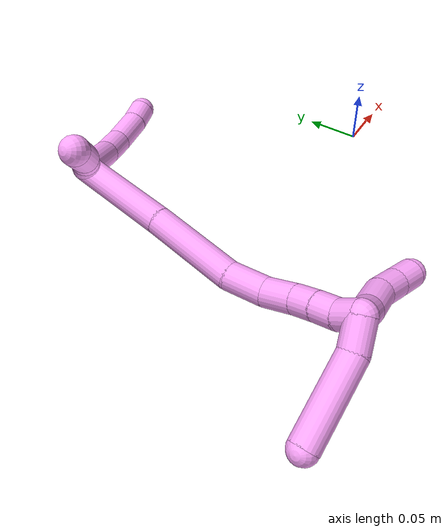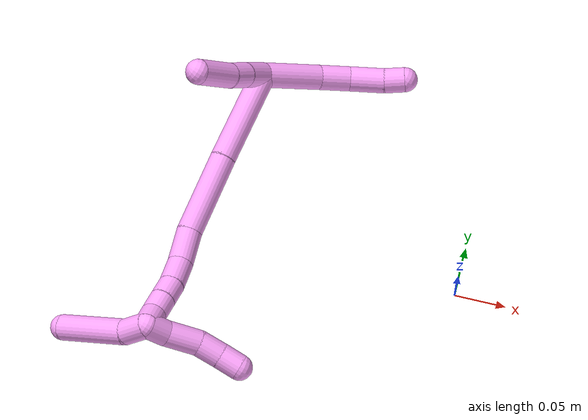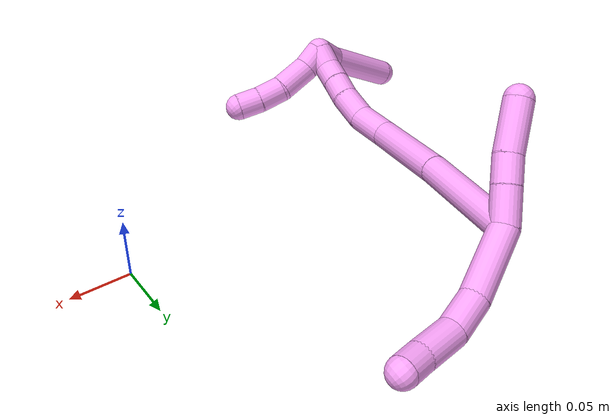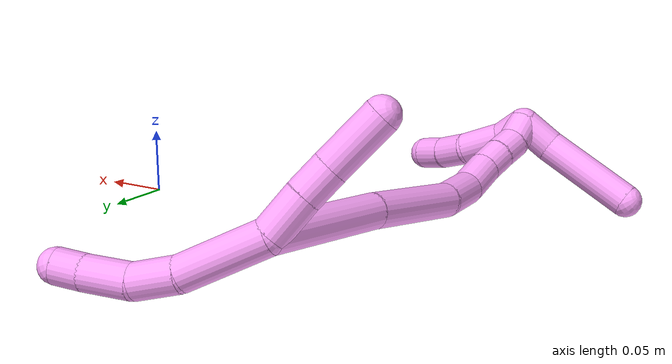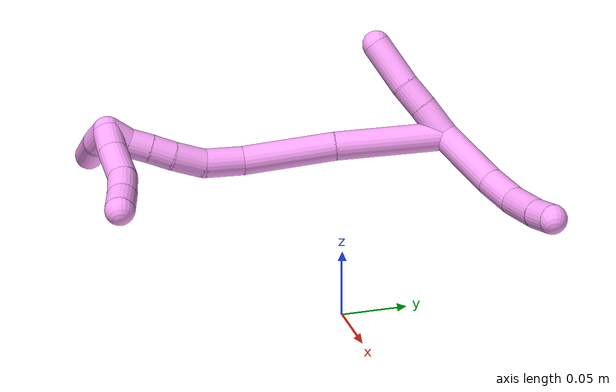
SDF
<sdf version="1.7">
 <world name="default">
  <model name="4">
   <static>0</static>
   <link name="4">
    <collision name="collision-cylinder-e_1_2_8">
     <pose>0.00943 0.011263 -0.027232 -2.74943 0.309716 -1.33217</pose>
     <geometry><cylinder><radius>0.0125</radius><length>0.061882</length></cylinder></geometry>
     <surface>
      <friction><ode><mu>1.16</mu><mu2>1.16</mu2><slip1>0</slip1><slip2>0</slip2></ode></friction>
      <contact><ode><kp>1e+06</kp><kd>1</kd><max_vel>0</max_vel><min_depth>0.001</min_depth></ode></contact>
     </surface>
    </collision>
    <visual name="visual-cylinder-e_1_2_8">
     <pose>0.00943 0.011263 -0.027232 -2.74943 0.309716 -1.33217</pose>
     <geometry><cylinder><radius>0.0125</radius><length>0.061882</length></cylinder></geometry>
     <material><ambient>1 0.65098 0.996078 1</ambient></material>
    </visual>
    <collision name="collision-cylinder-e_2_8_9">
     <pose>0.025715 0.02519 -0.068669 -2.95615 0.44279 -2.35804</pose>
     <geometry><cylinder><radius>0.0125</radius><length>0.031992</length></cylinder></geometry>
     <surface>
      <friction><ode><mu>1.16</mu><mu2>1.16</mu2><slip1>0</slip1><slip2>0</slip2></ode></friction>
      <contact><ode><kp>1e+06</kp><kd>1</kd><max_vel>0</max_vel><min_depth>0.001</min_depth></ode></contact>
     </surface>
    </collision>
    <visual name="visual-cylinder-e_2_8_9">
     <pose>0.025715 0.02519 -0.068669 -2.95615 0.44279 -2.35804</pose>
     <geometry><cylinder><radius>0.0125</radius><length>0.031992</length></cylinder></geometry>
     <material><ambient>1 0.65098 0.996078 1</ambient></material>
    </visual>
    <collision name="collision-cylinder-e_3_9_10">
     <pose>0.042436 0.026013 -0.097477 3.01611 0.590596 2.73427</pose>
     <geometry><cylinder><radius>0.0125</radius><length>0.03544</length></cylinder></geometry>
     <surface>
      <friction><ode><mu>1.16</mu><mu2>1.16</mu2><slip1>0</slip1><slip2>0</slip2></ode></friction>
      <contact><ode><kp>1e+06</kp><kd>1</kd><max_vel>0</max_vel><min_depth>0.001</min_depth></ode></contact>
     </surface>
    </collision>
    <visual name="visual-cylinder-e_3_9_10">
     <pose>0.042436 0.026013 -0.097477 3.01611 0.590596 2.73427</pose>
     <geometry><cylinder><radius>0.0125</radius><length>0.03544</length></cylinder></geometry>
     <material><ambient>1 0.65098 0.996078 1</ambient></material>
    </visual>
    <collision name="collision-cylinder-e_4_10_6">
     <pose>0.059029 0.023264 -0.119885 3.02584 0.707976 2.83056</pose>
     <geometry><cylinder><radius>0.0125</radius><length>0.020686</length></cylinder></geometry>
     <surface>
      <friction><ode><mu>1.16</mu><mu2>1.16</mu2><slip1>0</slip1><slip2>0</slip2></ode></friction>
      <contact><ode><kp>1e+06</kp><kd>1</kd><max_vel>0</max_vel><min_depth>0.001</min_depth></ode></contact>
     </surface>
    </collision>
    <visual name="visual-cylinder-e_4_10_6">
     <pose>0.059029 0.023264 -0.119885 3.02584 0.707976 2.83056</pose>
     <geometry><cylinder><radius>0.0125</radius><length>0.020686</length></cylinder></geometry>
     <material><ambient>1 0.65098 0.996078 1</ambient></material>
    </visual>
    <collision name="collision-cylinder-e_1_2_11">
     <pose>-3.7e-05 -0.011242 0.011191 0.787687 -0.002361 -0.000981</pose>
     <geometry><cylinder><radius>0.0125</radius><length>0.031725</length></cylinder></geometry>
     <surface>
      <friction><ode><mu>1.16</mu><mu2>1.16</mu2><slip1>0</slip1><slip2>0</slip2></ode></friction>
      <contact><ode><kp>1e+06</kp><kd>1</kd><max_vel>0</max_vel><min_depth>0.001</min_depth></ode></contact>
     </surface>
    </collision>
    <visual name="visual-cylinder-e_1_2_11">
     <pose>-3.7e-05 -0.011242 0.011191 0.787687 -0.002361 -0.000981</pose>
     <geometry><cylinder><radius>0.0125</radius><length>0.031725</length></cylinder></geometry>
     <material><ambient>1 0.65098 0.996078 1</ambient></material>
    </visual>
    <collision name="collision-cylinder-e_2_11_12">
     <pose>-0.000776 -0.03082 0.030939 0.77227 -0.058595 -0.023827</pose>
     <geometry><cylinder><radius>0.0125</radius><length>0.023934</length></cylinder></geometry>
     <surface>
      <friction><ode><mu>1.16</mu><mu2>1.16</mu2><slip1>0</slip1><slip2>0</slip2></ode></friction>
      <contact><ode><kp>1e+06</kp><kd>1</kd><max_vel>0</max_vel><min_depth>0.001</min_depth></ode></contact>
     </surface>
    </collision>
    <visual name="visual-cylinder-e_2_11_12">
     <pose>-0.000776 -0.03082 0.030939 0.77227 -0.058595 -0.023827</pose>
     <geometry><cylinder><radius>0.0125</radius><length>0.023934</length></cylinder></geometry>
     <material><ambient>1 0.65098 0.996078 1</ambient></material>
    </visual>
    <collision name="collision-cylinder-e_3_12_5">
     <pose>-0.001965 -0.052638 0.05709 0.653868 -0.022023 -0.007468</pose>
     <geometry><cylinder><radius>0.0125</radius><length>0.044341</length></cylinder></geometry>
     <surface>
      <friction><ode><mu>1.16</mu><mu2>1.16</mu2><slip1>0</slip1><slip2>0</slip2></ode></friction>
      <contact><ode><kp>1e+06</kp><kd>1</kd><max_vel>0</max_vel><min_depth>0.001</min_depth></ode></contact>
     </surface>
    </collision>
    <visual name="visual-cylinder-e_3_12_5">
     <pose>-0.001965 -0.052638 0.05709 0.653868 -0.022023 -0.007468</pose>
     <geometry><cylinder><radius>0.0125</radius><length>0.044341</length></cylinder></geometry>
     <material><ambient>1 0.65098 0.996078 1</ambient></material>
    </visual>
    <collision name="collision-cylinder-e_1_2_13">
     <pose>-0.033747 -0.034269 0.001025 1.54089 -0.777509 -0.75675</pose>
     <geometry><cylinder><radius>0.0125</radius><length>0.096214</length></cylinder></geometry>
     <surface>
      <friction><ode><mu>1.16</mu><mu2>1.16</mu2><slip1>0</slip1><slip2>0</slip2></ode></friction>
      <contact><ode><kp>1e+06</kp><kd>1</kd><max_vel>0</max_vel><min_depth>0.001</min_depth></ode></contact>
     </surface>
    </collision>
    <visual name="visual-cylinder-e_1_2_13">
     <pose>-0.033747 -0.034269 0.001025 1.54089 -0.777509 -0.75675</pose>
     <geometry><cylinder><radius>0.0125</radius><length>0.096214</length></cylinder></geometry>
     <material><ambient>1 0.65098 0.996078 1</ambient></material>
    </visual>
    <collision name="collision-cylinder-e_2_13_14">
     <pose>-0.097219 -0.095734 0.001381 1.59539 -0.829617 -0.847908</pose>
     <geometry><cylinder><radius>0.0125</radius><length>0.080589</length></cylinder></geometry>
     <surface>
      <friction><ode><mu>1.16</mu><mu2>1.16</mu2><slip1>0</slip1><slip2>0</slip2></ode></friction>
      <contact><ode><kp>1e+06</kp><kd>1</kd><max_vel>0</max_vel><min_depth>0.001</min_depth></ode></contact>
     </surface>
    </collision>
    <visual name="visual-cylinder-e_2_13_14">
     <pose>-0.097219 -0.095734 0.001381 1.59539 -0.829617 -0.847908</pose>
     <geometry><cylinder><radius>0.0125</radius><length>0.080589</length></cylinder></geometry>
     <material><ambient>1 0.65098 0.996078 1</ambient></material>
    </visual>
    <collision name="collision-cylinder-e_3_14_15">
     <pose>-0.136848 -0.136945 -0.000857 1.68231 -0.612321 -0.679526</pose>
     <geometry><cylinder><radius>0.0125</radius><length>0.034465</length></cylinder></geometry>
     <surface>
      <friction><ode><mu>1.16</mu><mu2>1.16</mu2><slip1>0</slip1><slip2>0</slip2></ode></friction>
      <contact><ode><kp>1e+06</kp><kd>1</kd><max_vel>0</max_vel><min_depth>0.001</min_depth></ode></contact>
     </surface>
    </collision>
    <visual name="visual-cylinder-e_3_14_15">
     <pose>-0.136848 -0.136945 -0.000857 1.68231 -0.612321 -0.679526</pose>
     <geometry><cylinder><radius>0.0125</radius><length>0.034465</length></cylinder></geometry>
     <material><ambient>1 0.65098 0.996078 1</ambient></material>
    </visual>
    <collision name="collision-cylinder-e_4_15_16">
     <pose>-0.151869 -0.164111 -0.001105 1.47066 -0.369358 -0.334795</pose>
     <geometry><cylinder><radius>0.0125</radius><length>0.028346</length></cylinder></geometry>
     <surface>
      <friction><ode><mu>1.16</mu><mu2>1.16</mu2><slip1>0</slip1><slip2>0</slip2></ode></friction>
      <contact><ode><kp>1e+06</kp><kd>1</kd><max_vel>0</max_vel><min_depth>0.001</min_depth></ode></contact>
     </surface>
    </collision>
    <visual name="visual-cylinder-e_4_15_16">
     <pose>-0.151869 -0.164111 -0.001105 1.47066 -0.369358 -0.334795</pose>
     <geometry><cylinder><radius>0.0125</radius><length>0.028346</length></cylinder></geometry>
     <material><ambient>1 0.65098 0.996078 1</ambient></material>
    </visual>
    <collision name="collision-cylinder-e_5_16_17">
     <pose>-0.160827 -0.186411 0.002459 1.33047 -0.38715 -0.305189</pose>
     <geometry><cylinder><radius>0.0125</radius><length>0.020346</length></cylinder></geometry>
     <surface>
      <friction><ode><mu>1.16</mu><mu2>1.16</mu2><slip1>0</slip1><slip2>0</slip2></ode></friction>
      <contact><ode><kp>1e+06</kp><kd>1</kd><max_vel>0</max_vel><min_depth>0.001</min_depth></ode></contact>
     </surface>
    </collision>
    <visual name="visual-cylinder-e_5_16_17">
     <pose>-0.160827 -0.186411 0.002459 1.33047 -0.38715 -0.305189</pose>
     <geometry><cylinder><radius>0.0125</radius><length>0.020346</length></cylinder></geometry>
     <material><ambient>1 0.65098 0.996078 1</ambient></material>
    </visual>
    <collision name="collision-cylinder-e_6_17_18">
     <pose>-0.16889 -0.2044 0.006788 1.33895 -0.435192 -0.346446</pose>
     <geometry><cylinder><radius>0.0125</radius><length>0.020032</length></cylinder></geometry>
     <surface>
      <friction><ode><mu>1.16</mu><mu2>1.16</mu2><slip1>0</slip1><slip2>0</slip2></ode></friction>
      <contact><ode><kp>1e+06</kp><kd>1</kd><max_vel>0</max_vel><min_depth>0.001</min_depth></ode></contact>
     </surface>
    </collision>
    <visual name="visual-cylinder-e_6_17_18">
     <pose>-0.16889 -0.2044 0.006788 1.33895 -0.435192 -0.346446</pose>
     <geometry><cylinder><radius>0.0125</radius><length>0.020032</length></cylinder></geometry>
     <material><ambient>1 0.65098 0.996078 1</ambient></material>
    </visual>
    <collision name="collision-cylinder-e_7_18_1">
     <pose>-0.174292 -0.222847 0.011399 1.31388 -0.118138 -0.091152</pose>
     <geometry><cylinder><radius>0.0125</radius><length>0.020008</length></cylinder></geometry>
     <surface>
      <friction><ode><mu>1.16</mu><mu2>1.16</mu2><slip1>0</slip1><slip2>0</slip2></ode></friction>
      <contact><ode><kp>1e+06</kp><kd>1</kd><max_vel>0</max_vel><min_depth>0.001</min_depth></ode></contact>
     </surface>
    </collision>
    <visual name="visual-cylinder-e_7_18_1">
     <pose>-0.174292 -0.222847 0.011399 1.31388 -0.118138 -0.091152</pose>
     <geometry><cylinder><radius>0.0125</radius><length>0.020008</length></cylinder></geometry>
     <material><ambient>1 0.65098 0.996078 1</ambient></material>
    </visual>
    <collision name="collision-cylinder-e_1_1_19">
     <pose>-0.175825 -0.230169 0.003445 -2.92679 -0.032993 0.303676</pose>
     <geometry><cylinder><radius>0.0125</radius><length>0.021461</length></cylinder></geometry>
     <surface>
      <friction><ode><mu>1.16</mu><mu2>1.16</mu2><slip1>0</slip1><slip2>0</slip2></ode></friction>
      <contact><ode><kp>1e+06</kp><kd>1</kd><max_vel>0</max_vel><min_depth>0.001</min_depth></ode></contact>
     </surface>
    </collision>
    <visual name="visual-cylinder-e_1_1_19">
     <pose>-0.175825 -0.230169 0.003445 -2.92679 -0.032993 0.303676</pose>
     <geometry><cylinder><radius>0.0125</radius><length>0.021461</length></cylinder></geometry>
     <material><ambient>1 0.65098 0.996078 1</ambient></material>
    </visual>
    <collision name="collision-cylinder-e_2_19_20">
     <pose>-0.172721 -0.226974 -0.023309 -3.08578 0.209024 -2.62145</pose>
     <geometry><cylinder><radius>0.0125</radius><length>0.033328</length></cylinder></geometry>
     <surface>
      <friction><ode><mu>1.16</mu><mu2>1.16</mu2><slip1>0</slip1><slip2>0</slip2></ode></friction>
      <contact><ode><kp>1e+06</kp><kd>1</kd><max_vel>0</max_vel><min_depth>0.001</min_depth></ode></contact>
     </surface>
    </collision>
    <visual name="visual-cylinder-e_2_19_20">
     <pose>-0.172721 -0.226974 -0.023309 -3.08578 0.209024 -2.62145</pose>
     <geometry><cylinder><radius>0.0125</radius><length>0.033328</length></cylinder></geometry>
     <material><ambient>1 0.65098 0.996078 1</ambient></material>
    </visual>
    <collision name="collision-cylinder-e_3_20_21">
     <pose>-0.16817 -0.228465 -0.051166 2.93721 0.092156 0.84512</pose>
     <geometry><cylinder><radius>0.0125</radius><length>0.023756</length></cylinder></geometry>
     <surface>
      <friction><ode><mu>1.16</mu><mu2>1.16</mu2><slip1>0</slip1><slip2>0</slip2></ode></friction>
      <contact><ode><kp>1e+06</kp><kd>1</kd><max_vel>0</max_vel><min_depth>0.001</min_depth></ode></contact>
     </surface>
    </collision>
    <visual name="visual-cylinder-e_3_20_21">
     <pose>-0.16817 -0.228465 -0.051166 2.93721 0.092156 0.84512</pose>
     <geometry><cylinder><radius>0.0125</radius><length>0.023756</length></cylinder></geometry>
     <material><ambient>1 0.65098 0.996078 1</ambient></material>
    </visual>
    <collision name="collision-cylinder-e_4_21_4">
     <pose>-0.165674 -0.234219 -0.07284 2.82081 0.131154 0.771208</pose>
     <geometry><cylinder><radius>0.0125</radius><length>0.021455</length></cylinder></geometry>
     <surface>
      <friction><ode><mu>1.16</mu><mu2>1.16</mu2><slip1>0</slip1><slip2>0</slip2></ode></friction>
      <contact><ode><kp>1e+06</kp><kd>1</kd><max_vel>0</max_vel><min_depth>0.001</min_depth></ode></contact>
     </surface>
    </collision>
    <visual name="visual-cylinder-e_4_21_4">
     <pose>-0.165674 -0.234219 -0.07284 2.82081 0.131154 0.771208</pose>
     <geometry><cylinder><radius>0.0125</radius><length>0.021455</length></cylinder></geometry>
     <material><ambient>1 0.65098 0.996078 1</ambient></material>
    </visual>
    <collision name="collision-cylinder-e_1_1_22">
     <pose>-0.187348 -0.227774 0.018485 -0.798411 -1.06772 0.488763</pose>
     <geometry><cylinder><radius>0.0125</radius><length>0.027113</length></cylinder></geometry>
     <surface>
      <friction><ode><mu>1.16</mu><mu2>1.16</mu2><slip1>0</slip1><slip2>0</slip2></ode></friction>
      <contact><ode><kp>1e+06</kp><kd>1</kd><max_vel>0</max_vel><min_depth>0.001</min_depth></ode></contact>
     </surface>
    </collision>
    <visual name="visual-cylinder-e_1_1_22">
     <pose>-0.187348 -0.227774 0.018485 -0.798411 -1.06772 0.488763</pose>
     <geometry><cylinder><radius>0.0125</radius><length>0.027113</length></cylinder></geometry>
     <material><ambient>1 0.65098 0.996078 1</ambient></material>
    </visual>
    <collision name="collision-cylinder-e_2_22_3">
     <pose>-0.224411 -0.205505 0.042653 -0.731145 -0.763018 0.304733</pose>
     <geometry><cylinder><radius>0.0125</radius><length>0.072887</length></cylinder></geometry>
     <surface>
      <friction><ode><mu>1.16</mu><mu2>1.16</mu2><slip1>0</slip1><slip2>0</slip2></ode></friction>
      <contact><ode><kp>1e+06</kp><kd>1</kd><max_vel>0</max_vel><min_depth>0.001</min_depth></ode></contact>
     </surface>
    </collision>
    <visual name="visual-cylinder-e_2_22_3">
     <pose>-0.224411 -0.205505 0.042653 -0.731145 -0.763018 0.304733</pose>
     <geometry><cylinder><radius>0.0125</radius><length>0.072887</length></cylinder></geometry>
     <material><ambient>1 0.65098 0.996078 1</ambient></material>
    </visual>
    <collision name="collision-sphere-3">
     <pose>-0.249597 -0.187918 0.062261 0 -0 0</pose>
     <geometry><sphere><radius>0.0125</radius></sphere></geometry>
     <surface>
      <friction><ode><mu>1.16</mu><mu2>1.16</mu2><slip1>0</slip1><slip2>0</slip2></ode></friction>
      <contact><ode><kp>1e+06</kp><kd>1</kd><max_vel>0</max_vel><min_depth>0.001</min_depth></ode></contact>
     </surface>
    </collision>
    <visual name="visual-sphere-3">
     <pose>-0.249597 -0.187918 0.062261 0 -0 0</pose>
     <geometry><sphere><radius>0.0125</radius></sphere></geometry>
     <material><ambient>1 0.65098 0.996078 1</ambient></material>
    </visual>
    <collision name="collision-sphere-22">
     <pose>-0.199225 -0.223093 0.023046 0 -0 0</pose>
     <geometry><sphere><radius>0.0125</radius></sphere></geometry>
     <surface>
      <friction><ode><mu>1.16</mu><mu2>1.16</mu2><slip1>0</slip1><slip2>0</slip2></ode></friction>
      <contact><ode><kp>1e+06</kp><kd>1</kd><max_vel>0</max_vel><min_depth>0.001</min_depth></ode></contact>
     </surface>
    </collision>
    <visual name="visual-sphere-22">
     <pose>-0.199225 -0.223093 0.023046 0 -0 0</pose>
     <geometry><sphere><radius>0.0125</radius></sphere></geometry>
     <material><ambient>1 0.65098 0.996078 1</ambient></material>
    </visual>
    <collision name="collision-sphere-4">
     <pose>-0.164271 -0.237573 -0.082933 0 -0 0</pose>
     <geometry><sphere><radius>0.0125</radius></sphere></geometry>
     <surface>
      <friction><ode><mu>1.16</mu><mu2>1.16</mu2><slip1>0</slip1><slip2>0</slip2></ode></friction>
      <contact><ode><kp>1e+06</kp><kd>1</kd><max_vel>0</max_vel><min_depth>0.001</min_depth></ode></contact>
     </surface>
    </collision>
    <visual name="visual-sphere-4">
     <pose>-0.164271 -0.237573 -0.082933 0 -0 0</pose>
     <geometry><sphere><radius>0.0125</radius></sphere></geometry>
     <material><ambient>1 0.65098 0.996078 1</ambient></material>
    </visual>
    <collision name="collision-sphere-21">
     <pose>-0.167077 -0.230866 -0.062747 0 -0 0</pose>
     <geometry><sphere><radius>0.0125</radius></sphere></geometry>
     <surface>
      <friction><ode><mu>1.16</mu><mu2>1.16</mu2><slip1>0</slip1><slip2>0</slip2></ode></friction>
      <contact><ode><kp>1e+06</kp><kd>1</kd><max_vel>0</max_vel><min_depth>0.001</min_depth></ode></contact>
     </surface>
    </collision>
    <visual name="visual-sphere-21">
     <pose>-0.167077 -0.230866 -0.062747 0 -0 0</pose>
     <geometry><sphere><radius>0.0125</radius></sphere></geometry>
     <material><ambient>1 0.65098 0.996078 1</ambient></material>
    </visual>
    <collision name="collision-sphere-20">
     <pose>-0.169263 -0.226065 -0.039585 0 -0 0</pose>
     <geometry><sphere><radius>0.0125</radius></sphere></geometry>
     <surface>
      <friction><ode><mu>1.16</mu><mu2>1.16</mu2><slip1>0</slip1><slip2>0</slip2></ode></friction>
      <contact><ode><kp>1e+06</kp><kd>1</kd><max_vel>0</max_vel><min_depth>0.001</min_depth></ode></contact>
     </surface>
    </collision>
    <visual name="visual-sphere-20">
     <pose>-0.169263 -0.226065 -0.039585 0 -0 0</pose>
     <geometry><sphere><radius>0.0125</radius></sphere></geometry>
     <material><ambient>1 0.65098 0.996078 1</ambient></material>
    </visual>
    <collision name="collision-sphere-11">
     <pose>-7.5e-05 -0.022485 0.022382 0 -0 0</pose>
     <geometry><sphere><radius>0.0125</radius></sphere></geometry>
     <surface>
      <friction><ode><mu>1.16</mu><mu2>1.16</mu2><slip1>0</slip1><slip2>0</slip2></ode></friction>
      <contact><ode><kp>1e+06</kp><kd>1</kd><max_vel>0</max_vel><min_depth>0.001</min_depth></ode></contact>
     </surface>
    </collision>
    <visual name="visual-sphere-11">
     <pose>-7.5e-05 -0.022485 0.022382 0 -0 0</pose>
     <geometry><sphere><radius>0.0125</radius></sphere></geometry>
     <material><ambient>1 0.65098 0.996078 1</ambient></material>
    </visual>
    <collision name="collision-sphere-6">
     <pose>0.065755 0.022356 -0.127689 0 -0 0</pose>
     <geometry><sphere><radius>0.0125</radius></sphere></geometry>
     <surface>
      <friction><ode><mu>1.16</mu><mu2>1.16</mu2><slip1>0</slip1><slip2>0</slip2></ode></friction>
      <contact><ode><kp>1e+06</kp><kd>1</kd><max_vel>0</max_vel><min_depth>0.001</min_depth></ode></contact>
     </surface>
    </collision>
    <visual name="visual-sphere-6">
     <pose>0.065755 0.022356 -0.127689 0 -0 0</pose>
     <geometry><sphere><radius>0.0125</radius></sphere></geometry>
     <material><ambient>1 0.65098 0.996078 1</ambient></material>
    </visual>
    <collision name="collision-sphere-10">
     <pose>0.052303 0.024171 -0.11208 0 -0 0</pose>
     <geometry><sphere><radius>0.0125</radius></sphere></geometry>
     <surface>
      <friction><ode><mu>1.16</mu><mu2>1.16</mu2><slip1>0</slip1><slip2>0</slip2></ode></friction>
      <contact><ode><kp>1e+06</kp><kd>1</kd><max_vel>0</max_vel><min_depth>0.001</min_depth></ode></contact>
     </surface>
    </collision>
    <visual name="visual-sphere-10">
     <pose>0.052303 0.024171 -0.11208 0 -0 0</pose>
     <geometry><sphere><radius>0.0125</radius></sphere></geometry>
     <material><ambient>1 0.65098 0.996078 1</ambient></material>
    </visual>
    <collision name="collision-sphere-9">
     <pose>0.032568 0.027855 -0.082874 0 -0 0</pose>
     <geometry><sphere><radius>0.0125</radius></sphere></geometry>
     <surface>
      <friction><ode><mu>1.16</mu><mu2>1.16</mu2><slip1>0</slip1><slip2>0</slip2></ode></friction>
      <contact><ode><kp>1e+06</kp><kd>1</kd><max_vel>0</max_vel><min_depth>0.001</min_depth></ode></contact>
     </surface>
    </collision>
    <visual name="visual-sphere-9">
     <pose>0.032568 0.027855 -0.082874 0 -0 0</pose>
     <geometry><sphere><radius>0.0125</radius></sphere></geometry>
     <material><ambient>1 0.65098 0.996078 1</ambient></material>
    </visual>
    <collision name="collision-sphere-2">
     <geometry><sphere><radius>0.0125</radius></sphere></geometry>
     <surface>
      <friction><ode><mu>1.16</mu><mu2>1.16</mu2><slip1>0</slip1><slip2>0</slip2></ode></friction>
      <contact><ode><kp>1e+06</kp><kd>1</kd><max_vel>0</max_vel><min_depth>0.001</min_depth></ode></contact>
     </surface>
    </collision>
    <visual name="visual-sphere-2">
     <geometry><sphere><radius>0.0125</radius></sphere></geometry>
     <material><ambient>1 0.65098 0.996078 1</ambient></material>
    </visual>
    <collision name="collision-sphere-19">
     <pose>-0.176179 -0.227883 -0.007033 0 -0 0</pose>
     <geometry><sphere><radius>0.0125</radius></sphere></geometry>
     <surface>
      <friction><ode><mu>1.16</mu><mu2>1.16</mu2><slip1>0</slip1><slip2>0</slip2></ode></friction>
      <contact><ode><kp>1e+06</kp><kd>1</kd><max_vel>0</max_vel><min_depth>0.001</min_depth></ode></contact>
     </surface>
    </collision>
    <visual name="visual-sphere-19">
     <pose>-0.176179 -0.227883 -0.007033 0 -0 0</pose>
     <geometry><sphere><radius>0.0125</radius></sphere></geometry>
     <material><ambient>1 0.65098 0.996078 1</ambient></material>
    </visual>
    <collision name="collision-sphere-8">
     <pose>0.018861 0.022525 -0.054463 0 -0 0</pose>
     <geometry><sphere><radius>0.0125</radius></sphere></geometry>
     <surface>
      <friction><ode><mu>1.16</mu><mu2>1.16</mu2><slip1>0</slip1><slip2>0</slip2></ode></friction>
      <contact><ode><kp>1e+06</kp><kd>1</kd><max_vel>0</max_vel><min_depth>0.001</min_depth></ode></contact>
     </surface>
    </collision>
    <visual name="visual-sphere-8">
     <pose>0.018861 0.022525 -0.054463 0 -0 0</pose>
     <geometry><sphere><radius>0.0125</radius></sphere></geometry>
     <material><ambient>1 0.65098 0.996078 1</ambient></material>
    </visual>
    <collision name="collision-sphere-12">
     <pose>-0.001477 -0.039156 0.039497 0 -0 0</pose>
     <geometry><sphere><radius>0.0125</radius></sphere></geometry>
     <surface>
      <friction><ode><mu>1.16</mu><mu2>1.16</mu2><slip1>0</slip1><slip2>0</slip2></ode></friction>
      <contact><ode><kp>1e+06</kp><kd>1</kd><max_vel>0</max_vel><min_depth>0.001</min_depth></ode></contact>
     </surface>
    </collision>
    <visual name="visual-sphere-12">
     <pose>-0.001477 -0.039156 0.039497 0 -0 0</pose>
     <geometry><sphere><radius>0.0125</radius></sphere></geometry>
     <material><ambient>1 0.65098 0.996078 1</ambient></material>
    </visual>
    <collision name="collision-sphere-5">
     <pose>-0.002453 -0.06612 0.074683 0 -0 0</pose>
     <geometry><sphere><radius>0.0125</radius></sphere></geometry>
     <surface>
      <friction><ode><mu>1.16</mu><mu2>1.16</mu2><slip1>0</slip1><slip2>0</slip2></ode></friction>
      <contact><ode><kp>1e+06</kp><kd>1</kd><max_vel>0</max_vel><min_depth>0.001</min_depth></ode></contact>
     </surface>
    </collision>
    <visual name="visual-sphere-5">
     <pose>-0.002453 -0.06612 0.074683 0 -0 0</pose>
     <geometry><sphere><radius>0.0125</radius></sphere></geometry>
     <material><ambient>1 0.65098 0.996078 1</ambient></material>
    </visual>
    <collision name="collision-sphere-13">
     <pose>-0.067495 -0.068537 0.00205 0 -0 0</pose>
     <geometry><sphere><radius>0.0125</radius></sphere></geometry>
     <surface>
      <friction><ode><mu>1.16</mu><mu2>1.16</mu2><slip1>0</slip1><slip2>0</slip2></ode></friction>
      <contact><ode><kp>1e+06</kp><kd>1</kd><max_vel>0</max_vel><min_depth>0.001</min_depth></ode></contact>
     </surface>
    </collision>
    <visual name="visual-sphere-13">
     <pose>-0.067495 -0.068537 0.00205 0 -0 0</pose>
     <geometry><sphere><radius>0.0125</radius></sphere></geometry>
     <material><ambient>1 0.65098 0.996078 1</ambient></material>
    </visual>
    <collision name="collision-sphere-14">
     <pose>-0.126943 -0.122931 0.000713 0 -0 0</pose>
     <geometry><sphere><radius>0.0125</radius></sphere></geometry>
     <surface>
      <friction><ode><mu>1.16</mu><mu2>1.16</mu2><slip1>0</slip1><slip2>0</slip2></ode></friction>
      <contact><ode><kp>1e+06</kp><kd>1</kd><max_vel>0</max_vel><min_depth>0.001</min_depth></ode></contact>
     </surface>
    </collision>
    <visual name="visual-sphere-14">
     <pose>-0.126943 -0.122931 0.000713 0 -0 0</pose>
     <geometry><sphere><radius>0.0125</radius></sphere></geometry>
     <material><ambient>1 0.65098 0.996078 1</ambient></material>
    </visual>
    <collision name="collision-sphere-15">
     <pose>-0.146752 -0.150959 -0.002426 0 -0 0</pose>
     <geometry><sphere><radius>0.0125</radius></sphere></geometry>
     <surface>
      <friction><ode><mu>1.16</mu><mu2>1.16</mu2><slip1>0</slip1><slip2>0</slip2></ode></friction>
      <contact><ode><kp>1e+06</kp><kd>1</kd><max_vel>0</max_vel><min_depth>0.001</min_depth></ode></contact>
     </surface>
    </collision>
    <visual name="visual-sphere-15">
     <pose>-0.146752 -0.150959 -0.002426 0 -0 0</pose>
     <geometry><sphere><radius>0.0125</radius></sphere></geometry>
     <material><ambient>1 0.65098 0.996078 1</ambient></material>
    </visual>
    <collision name="collision-sphere-16">
     <pose>-0.156986 -0.177262 0.000217 0 -0 0</pose>
     <geometry><sphere><radius>0.0125</radius></sphere></geometry>
     <surface>
      <friction><ode><mu>1.16</mu><mu2>1.16</mu2><slip1>0</slip1><slip2>0</slip2></ode></friction>
      <contact><ode><kp>1e+06</kp><kd>1</kd><max_vel>0</max_vel><min_depth>0.001</min_depth></ode></contact>
     </surface>
    </collision>
    <visual name="visual-sphere-16">
     <pose>-0.156986 -0.177262 0.000217 0 -0 0</pose>
     <geometry><sphere><radius>0.0125</radius></sphere></geometry>
     <material><ambient>1 0.65098 0.996078 1</ambient></material>
    </visual>
    <collision name="collision-sphere-17">
     <pose>-0.164667 -0.19556 0.004701 0 -0 0</pose>
     <geometry><sphere><radius>0.0125</radius></sphere></geometry>
     <surface>
      <friction><ode><mu>1.16</mu><mu2>1.16</mu2><slip1>0</slip1><slip2>0</slip2></ode></friction>
      <contact><ode><kp>1e+06</kp><kd>1</kd><max_vel>0</max_vel><min_depth>0.001</min_depth></ode></contact>
     </surface>
    </collision>
    <visual name="visual-sphere-17">
     <pose>-0.164667 -0.19556 0.004701 0 -0 0</pose>
     <geometry><sphere><radius>0.0125</radius></sphere></geometry>
     <material><ambient>1 0.65098 0.996078 1</ambient></material>
    </visual>
    <collision name="collision-sphere-18">
     <pose>-0.173113 -0.213239 0.008875 0 -0 0</pose>
     <geometry><sphere><radius>0.0125</radius></sphere></geometry>
     <surface>
      <friction><ode><mu>1.16</mu><mu2>1.16</mu2><slip1>0</slip1><slip2>0</slip2></ode></friction>
      <contact><ode><kp>1e+06</kp><kd>1</kd><max_vel>0</max_vel><min_depth>0.001</min_depth></ode></contact>
     </surface>
    </collision>
    <visual name="visual-sphere-18">
     <pose>-0.173113 -0.213239 0.008875 0 -0 0</pose>
     <geometry><sphere><radius>0.0125</radius></sphere></geometry>
     <material><ambient>1 0.65098 0.996078 1</ambient></material>
    </visual>
    <collision name="collision-sphere-1">
     <pose>-0.175471 -0.232455 0.013923 0 -0 0</pose>
     <geometry><sphere><radius>0.0125</radius></sphere></geometry>
     <surface>
      <friction><ode><mu>1.16</mu><mu2>1.16</mu2><slip1>0</slip1><slip2>0</slip2></ode></friction>
      <contact><ode><kp>1e+06</kp><kd>1</kd><max_vel>0</max_vel><min_depth>0.001</min_depth></ode></contact>
     </surface>
    </collision>
    <visual name="visual-sphere-1">
     <pose>-0.175471 -0.232455 0.013923 0 -0 0</pose>
     <geometry><sphere><radius>0.0125</radius></sphere></geometry>
     <material><ambient>1 0.65098 0.996078 1</ambient></material>
    </visual>
    <inertial>
     <pose>-0.086316 -0.103151 -0.00733 0 -0 0</pose>
     <mass>0.75</mass>
     <inertia><ixx>1.7e-05</ixx><ixy>0</ixy><ixz>0</ixz><iyy>2.2e-05</iyy><iyz>0</iyz><izz>0.000183</izz></inertia>
    </inertial>
   </link>
   <pose>-0.232595 0.163832 0.044603 -0.857259 -0.734738 0.932186</pose>
  </model>
 </world>
</sdf>
